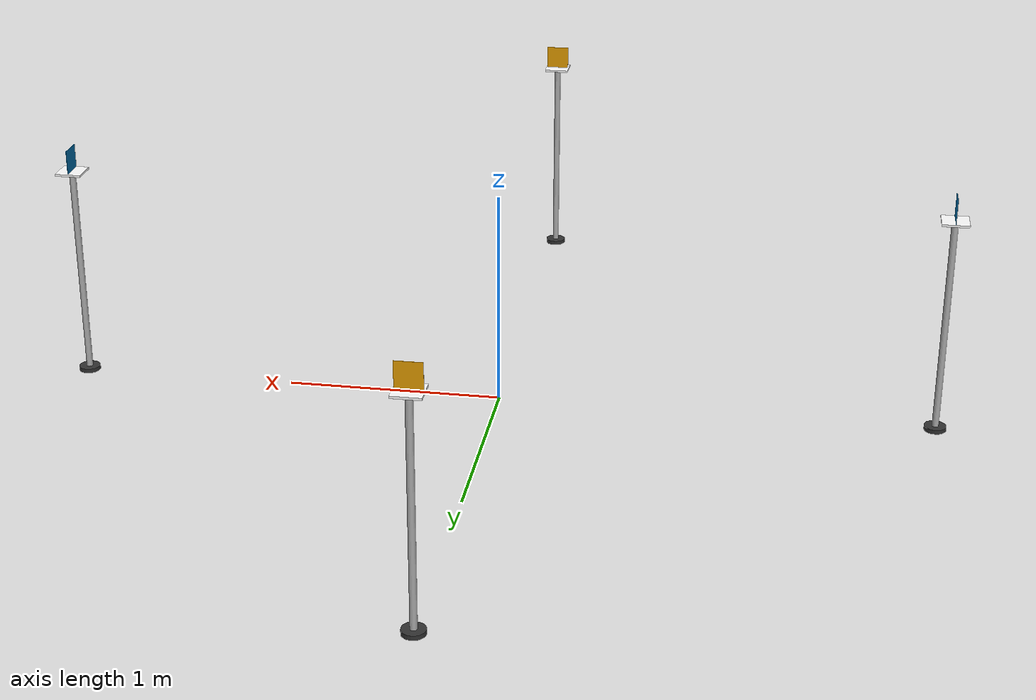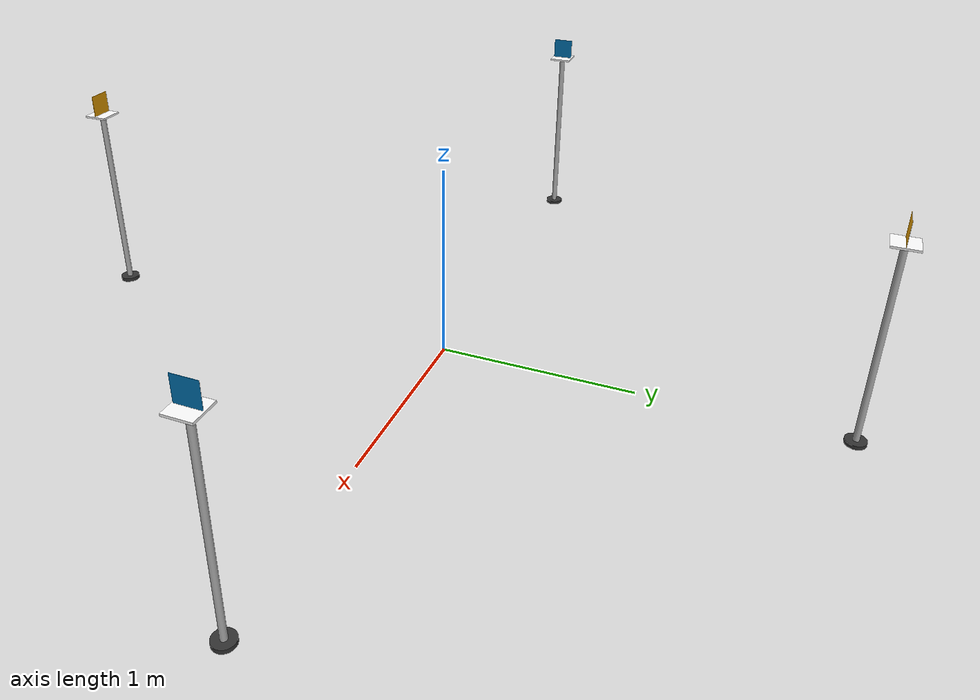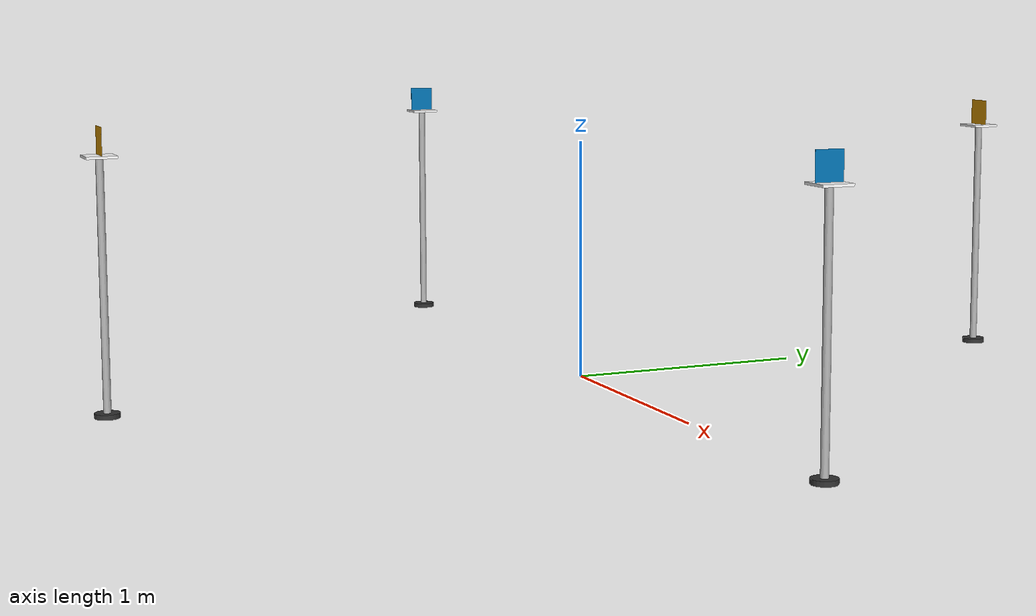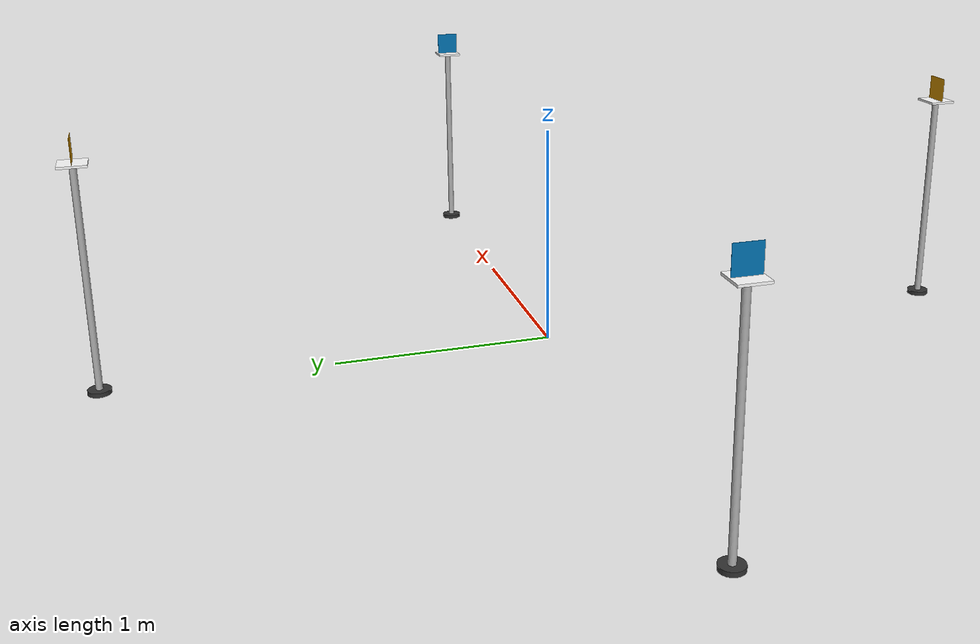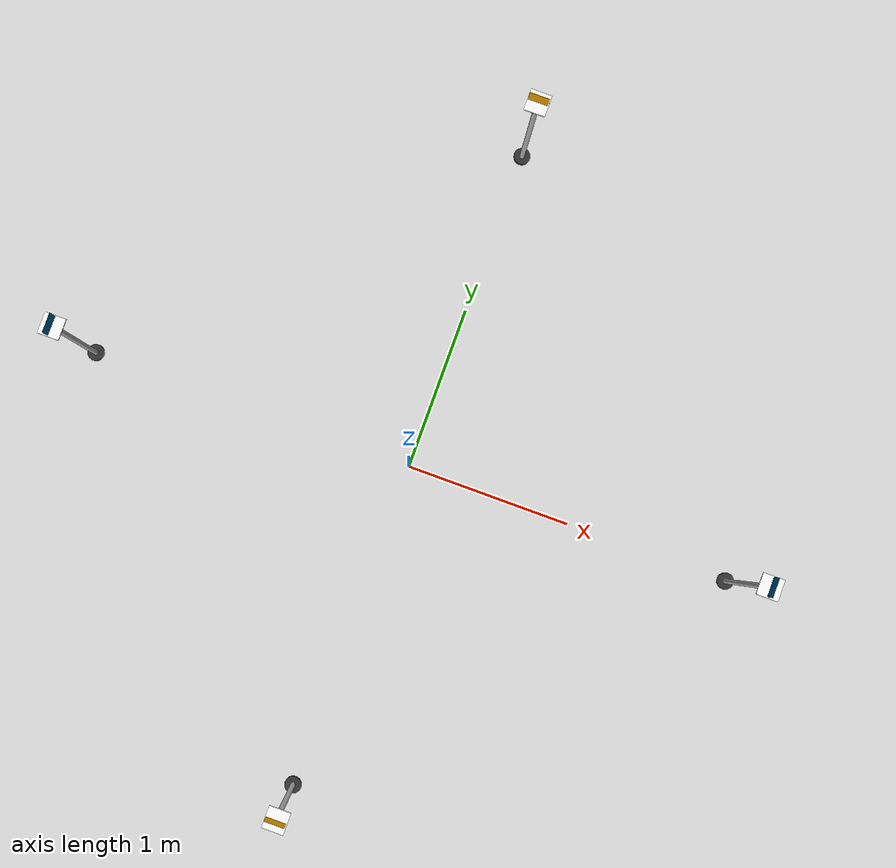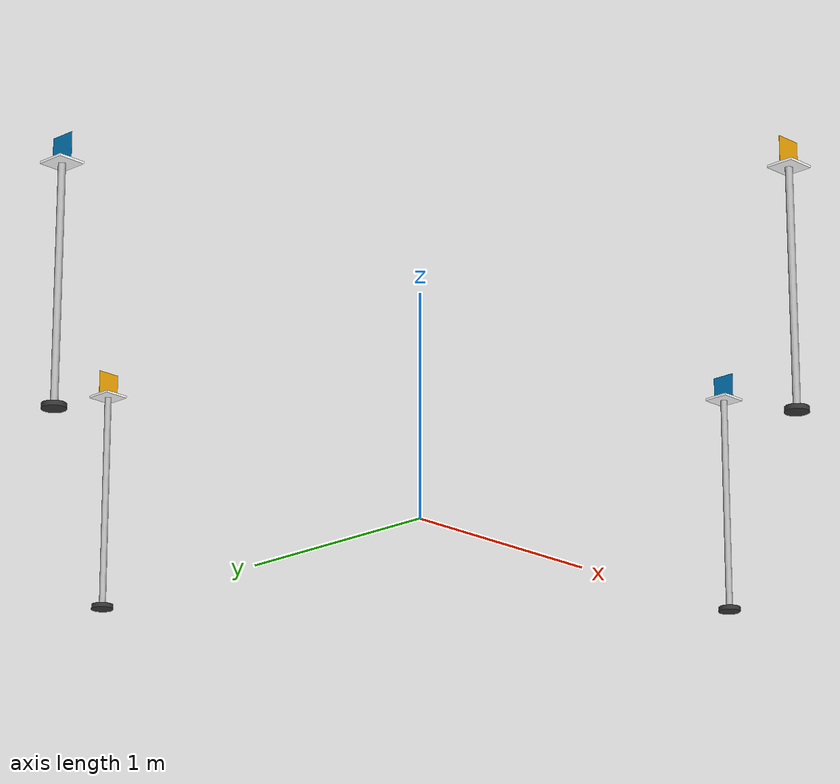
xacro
<?xml version="1.0"?>
<robot xmlns:xacro="http://ros.org/wiki/xacro" name="standalone_apriltags">

  <!-- 引入apriltag宏 -->
  <xacro:include filename="$(find kuavo_assets)/models/apriltag/urdf/apriltag.xacro"/>

  <!-- AprilTag 位置参数 (ID 0-3) -->
  <xacro:arg name="tag0_x" default="2.0"/>
  <xacro:arg name="tag0_y" default="0.0"/>
  <xacro:arg name="tag0_z" default="1.0"/>
  <xacro:arg name="tag0_yaw" default="3.14159"/>

  <xacro:arg name="tag1_x" default="0.0"/>
  <xacro:arg name="tag1_y" default="2.0"/>
  <xacro:arg name="tag1_z" default="1.0"/>
  <xacro:arg name="tag1_yaw" default="-1.5708"/>

  <xacro:arg name="tag2_x" default="-2.0"/>
  <xacro:arg name="tag2_y" default="0.0"/>
  <xacro:arg name="tag2_z" default="1.0"/>
  <xacro:arg name="tag2_yaw" default="0.0"/>

  <xacro:arg name="tag3_x" default="0.0"/>
  <xacro:arg name="tag3_y" default="-2.0"/>
  <xacro:arg name="tag3_z" default="1.0"/>
  <xacro:arg name="tag3_yaw" default="1.5708"/>

  <link name="world"/>

  <!-- AprilTag 支架宏 (带立柱的二维码) -->
  <xacro:macro name="apriltag_stand" params="id tx ty tz tyaw troll:=1.5708 tpitch:=0 tyaw_tag:=-1.5708">
    <!-- 支架底座 -->
    <link name="tag${id}_base">
      <visual>
        <geometry>
          <cylinder radius="0.05" length="0.02"/>
        </geometry>
        <material name="dark_grey">
          <color rgba="0.2 0.2 0.2 1.0"/>
        </material>
      </visual>
      <collision>
        <geometry>
          <cylinder radius="0.05" length="0.02"/>
        </geometry>
      </collision>
      <inertial>
        <mass value="0.5"/>
        <inertia ixx="0.001" ixy="0" ixz="0" iyy="0.001" iyz="0" izz="0.001"/>
      </inertial>
    </link>

    <joint name="world_to_tag${id}_base" type="fixed">
      <parent link="world"/>
      <child link="tag${id}_base"/>
      <origin xyz="${tx} ${ty} 0.01" rpy="0 0 0"/>
    </joint>

    <!-- 支架立柱 -->
    <link name="tag${id}_pole">
      <visual>
        <geometry>
          <cylinder radius="0.015" length="${tz}"/>
        </geometry>
        <material name="silver">
          <color rgba="0.7 0.7 0.7 1.0"/>
        </material>
      </visual>
      <collision>
        <geometry>
          <cylinder radius="0.015" length="${tz}"/>
        </geometry>
      </collision>
      <inertial>
        <mass value="0.3"/>
        <inertia ixx="0.01" ixy="0" ixz="0" iyy="0.01" iyz="0" izz="0.001"/>
      </inertial>
    </link>

    <joint name="tag${id}_base_to_pole" type="fixed">
      <parent link="tag${id}_base"/>
      <child link="tag${id}_pole"/>
      <origin xyz="0 0 ${tz/2}" rpy="0 0 0"/>
    </joint>

    <!-- 二维码背板 -->
    <link name="tag${id}_board">
      <visual>
        <geometry>
          <box size="0.12 0.12 0.01"/>
        </geometry>
        <material name="white">
          <color rgba="1.0 1.0 1.0 1.0"/>
        </material>
      </visual>
      <collision>
        <geometry>
          <box size="0.12 0.12 0.01"/>
        </geometry>
      </collision>
      <inertial>
        <mass value="0.1"/>
        <inertia ixx="0.0001" ixy="0" ixz="0" iyy="0.0001" iyz="0" izz="0.0001"/>
      </inertial>
    </link>

    <joint name="tag${id}_pole_to_board" type="fixed">
      <parent link="tag${id}_pole"/>
      <child link="tag${id}_board"/>
      <origin xyz="0 0 ${tz/2}" rpy="0 0 ${tyaw}"/>
    </joint>

    <gazebo reference="tag${id}_base">
      <material>Gazebo/DarkGrey</material>
    </gazebo>
    <gazebo reference="tag${id}_pole">
      <material>Gazebo/Grey</material>
    </gazebo>
    <gazebo reference="tag${id}_board">
      <material>Gazebo/White</material>
    </gazebo>

    <!-- AprilTag 二维码 -->
    <xacro:apriltag_marker parent_link="tag${id}_board" id="${id}">
      <origin xyz="0 0 0.06" rpy="${troll} ${tpitch} ${tyaw_tag}"/>
    </xacro:apriltag_marker>
  </xacro:macro>

  <!-- 生成 4 个 AprilTag (ID 0-3) -->
  <xacro:apriltag_stand id="0" tx="$(arg tag0_x)" ty="$(arg tag0_y)" tz="$(arg tag0_z)" tyaw="$(arg tag0_yaw)"/>
  <xacro:apriltag_stand id="1" tx="$(arg tag1_x)" ty="$(arg tag1_y)" tz="$(arg tag1_z)" tyaw="$(arg tag1_yaw)"/>
  <xacro:apriltag_stand id="2" tx="$(arg tag2_x)" ty="$(arg tag2_y)" tz="$(arg tag2_z)" tyaw="$(arg tag2_yaw)"/>
  <xacro:apriltag_stand id="3" tx="$(arg tag3_x)" ty="$(arg tag3_y)" tz="$(arg tag3_z)" tyaw="$(arg tag3_yaw)"/>

</robot>

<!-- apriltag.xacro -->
<robot xmlns:xacro="http://ros.org/wiki/xacro" name="apriltag_marker">

  <xacro:macro name="apriltag_marker" params="parent_link *origin id">
    <!-- 定义二维码的Link -->
    <link name="apriltag_marker_${id}">
      <visual>
        <origin xyz="0 0 0" rpy="0 0 0"/>
        <geometry>
          <box size="0.11 0.11 0.001"/>
        </geometry>
      </visual>
      <collision>
        <geometry>
          <box size="0.11 0.11 0.001"/>
        </geometry>
      </collision>
    </link>

    <joint name="apriltag_joint_${id}" type="fixed">
      <xacro:insert_block name="origin" />
      <parent link="${parent_link}"/>
      <child link="apriltag_marker_${id}"/>
    </joint>

    <gazebo reference="apriltag_marker_${id}">
      <visual>
        <material>
          <script>
            <uri>file://$(find kuavo_assets)/models/apriltag/materials/apriltag_${id}.material</uri>
            <name>AprilTag/Marker${id}</name>
          </script>
          <shader type="pixel">
            <normal_map>__default__</normal_map>
          </shader>
          <double_sided>false</double_sided>
        </material>
      </visual>
    </gazebo>
  </xacro:macro>
</robot>
